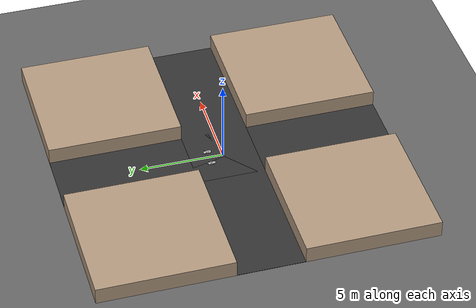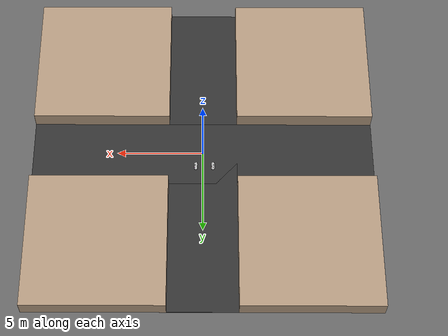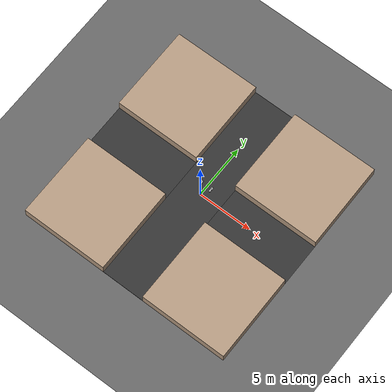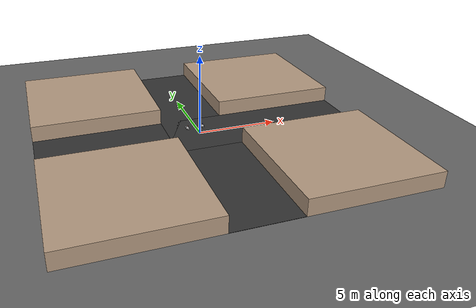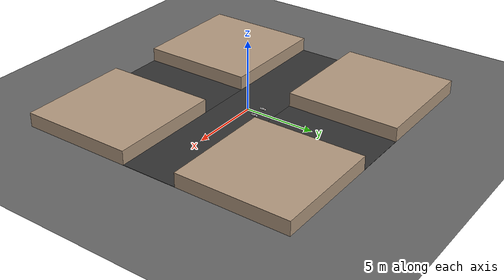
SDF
<?xml version="1.0" ?>
<sdf version="1.6">
  <world name="intersection_world">

    <!-- 기본 조명 -->
    <include>
      <uri>model://sun</uri>
    </include>

    <!-- 회색 바닥 (아스팔트 느낌) -->
    <model name="ground_plane">
      <static>true</static>
      <link name="link">
        <collision name="collision">
          <geometry>
            <plane>
              <normal>0 0 1</normal>
              <size>50 50</size>
            </plane>
          </geometry>
        </collision>
        <visual name="visual">
          <geometry>
            <plane>
              <normal>0 0 1</normal>
              <size>50 50</size>
            </plane>
          </geometry>
          <material>
            <ambient>0.3 0.3 0.3 1</ambient>
            <diffuse>0.4 0.4 0.4 1</diffuse>
          </material>
        </visual>
      </link>
    </model>

    <!-- 수평 도로 (동서 방향, 폭 4m, 길이 20m) -->
    <model name="road_horizontal">
      <static>true</static>
      <pose>0 0 0.01 0 0 0</pose>
      <link name="link">
        <visual name="visual">
          <geometry>
            <box>
              <size>20 4 0.02</size>
            </box>
          </geometry>
          <material>
            <ambient>0.15 0.15 0.15 1</ambient>
            <diffuse>0.2 0.2 0.2 1</diffuse>
          </material>
        </visual>
      </link>
    </model>

    <!-- 수직 도로 (남북 방향) -->
    <model name="road_vertical">
      <static>true</static>
      <pose>0 0 0.01 0 0 0</pose>
      <link name="link">
        <visual name="visual">
          <geometry>
            <box>
              <size>4 20 0.02</size>
            </box>
          </geometry>
          <material>
            <ambient>0.15 0.15 0.15 1</ambient>
            <diffuse>0.2 0.2 0.2 1</diffuse>
          </material>
        </visual>
      </link>
    </model>

    <!-- 도로 경계 벽 (북서 블록) -->
    <model name="block_nw">
      <static>true</static>
      <pose>-6 6 0.5 0 0 0</pose>
      <link name="link">
        <collision name="collision">
          <geometry>
            <box><size>8 8 1</size></box>
          </geometry>
        </collision>
        <visual name="visual">
          <geometry>
            <box><size>8 8 1</size></box>
          </geometry>
          <material>
            <ambient>0.6 0.5 0.4 1</ambient>
            <diffuse>0.7 0.6 0.5 1</diffuse>
          </material>
        </visual>
      </link>
    </model>

    <!-- 도로 경계 벽 (북동 블록) -->
    <model name="block_ne">
      <static>true</static>
      <pose>6 6 0.5 0 0 0</pose>
      <link name="link">
        <collision name="collision">
          <geometry>
            <box><size>8 8 1</size></box>
          </geometry>
        </collision>
        <visual name="visual">
          <geometry>
            <box><size>8 8 1</size></box>
          </geometry>
          <material>
            <ambient>0.6 0.5 0.4 1</ambient>
            <diffuse>0.7 0.6 0.5 1</diffuse>
          </material>
        </visual>
      </link>
    </model>

    <!-- 도로 경계 벽 (남서 블록) -->
    <model name="block_sw">
      <static>true</static>
      <pose>-6 -6 0.5 0 0 0</pose>
      <link name="link">
        <collision name="collision">
          <geometry>
            <box><size>8 8 1</size></box>
          </geometry>
        </collision>
        <visual name="visual">
          <geometry>
            <box><size>8 8 1</size></box>
          </geometry>
          <material>
            <ambient>0.6 0.5 0.4 1</ambient>
            <diffuse>0.7 0.6 0.5 1</diffuse>
          </material>
        </visual>
      </link>
    </model>

    <!-- 도로 경계 벽 (남동 블록) -->
    <model name="block_se">
      <static>true</static>
      <pose>6 -6 0.5 0 0 0</pose>
      <link name="link">
        <collision name="collision">
          <geometry>
            <box><size>8 8 1</size></box>
          </geometry>
        </collision>
        <visual name="visual">
          <geometry>
            <box><size>8 8 1</size></box>
          </geometry>
          <material>
            <ambient>0.6 0.5 0.4 1</ambient>
            <diffuse>0.7 0.6 0.5 1</diffuse>
          </material>
        </visual>
      </link>
    </model>

    <!-- 물리 엔진 -->
    <physics type="ode">
      <real_time_update_rate>1000</real_time_update_rate>
      <max_step_size>0.001</max_step_size>
    </physics>

    <!-- 카메라 시점 -->
    <gui>
      <camera name="user_camera">
        <pose>0 -15 12 0 0.8 1.5708</pose>
      </camera>
    </gui>
    <!-- 경찰차 1 -->
    <include>
      <uri>model://police_car</uri>
      <name>police_car_1</name>
      <pose>-0.5 1.0 0 0 0 1.5708</pose>
    </include>

    <!-- 경찰차 2 -->
    <include>
      <uri>model://police_car</uri>
      <name>police_car_2</name>
      <pose>0.5 1.0 0 0 0 1.5708</pose>
    </include>
  </world>
</sdf>

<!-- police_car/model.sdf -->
<sdf version="1.6">
  <model name="police_car">
    <static>true</static>

    <link name="body">
      <pose>0 0 0 0 0 0</pose>

      <!-- 메시 비주얼 -->
      <visual name="visual">
        <pose>-0.12 0.08 0 0 0 0</pose>
        <geometry>
          <mesh>
            <uri>model://police_car/meshes/police_car.obj</uri>
            <scale>0.02 0.02 0.02</scale>
          </mesh>
        </geometry>
      </visual>

      <!-- 차체 collision (visual 크기에 맞춤) -->
      <collision name="collision">
        <geometry>
          <box>
            <size>0.25 0.12 0.08</size>
          </box>
        </geometry>
        <pose>0 0 0.04 0 0 0</pose>
      </collision>

      <!-- 빨간 경광등 (시각화) -->
      <visual name="red_light_visual">
        <pose>-0.02 0 0.1 0 0 0</pose>
        <geometry>
          <sphere>
            <radius>0.015</radius>
          </sphere>
        </geometry>
        <material>
          <ambient>1 0 0 1</ambient>
          <diffuse>1 0 0 1</diffuse>
          <emissive>1 0 0 1</emissive>
        </material>
      </visual>

      <!-- 파란 경광등 (시각화) -->
      <visual name="blue_light_visual">
        <pose>0.02 0 0.1 0 0 0</pose>
        <geometry>
          <sphere>
            <radius>0.015</radius>
          </sphere>
        </geometry>
        <material>
          <ambient>0 0 1 1</ambient>
          <diffuse>0 0 1 1</diffuse>
          <emissive>0 0 1 1</emissive>
        </material>
      </visual>

      <!-- 빨간 light source -->
      <light name="red_light" type="point">
        <pose>-0.02 0 0.1 0 0 0</pose>
        <diffuse>1 0 0 1</diffuse>
        <specular>1 0 0 1</specular>
        <attenuation>
          <range>5</range>
          <linear>0.1</linear>
          <constant>0.2</constant>
          <quadratic>0.0</quadratic>
        </attenuation>
        <cast_shadows>false</cast_shadows>
      </light>

      <!-- 파란 light source -->
      <light name="blue_light" type="point">
        <pose>0.02 0 0.1 0 0 0</pose>
        <diffuse>0 0 1 1</diffuse>
        <specular>0 0 1 1</specular>
        <attenuation>
          <range>5</range>
          <linear>0.1</linear>
          <constant>0.2</constant>
          <quadratic>0.0</quadratic>
        </attenuation>
        <cast_shadows>false</cast_shadows>
      </light>
    </link>

    <!-- 경광등 점멸 플러그인 -->
    <plugin name="flashlight_plugin" filename="libFlashLightPlugin.so">
      <enable>true</enable>
      <light>
        <id>body/red_light</id>
        <duration>0.5</duration>
        <interval>0.5</interval>
        <color>1 0 0</color>
      </light>
      <light>
        <id>body/blue_light</id>
        <duration>0.5</duration>
        <interval>0.5</interval>
        <color>0 0 1</color>
        <enable>false</enable>
      </light>
    </plugin>
  </model>
</sdf>
